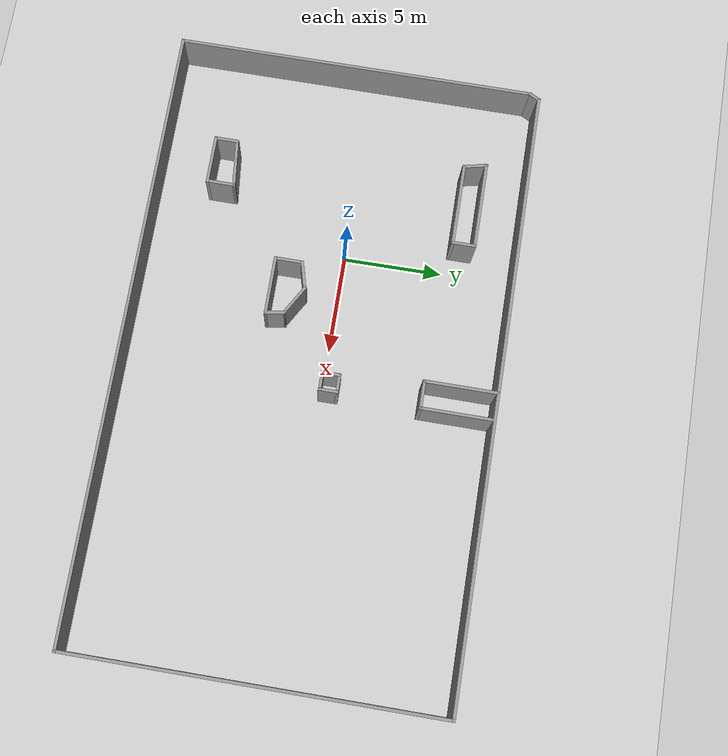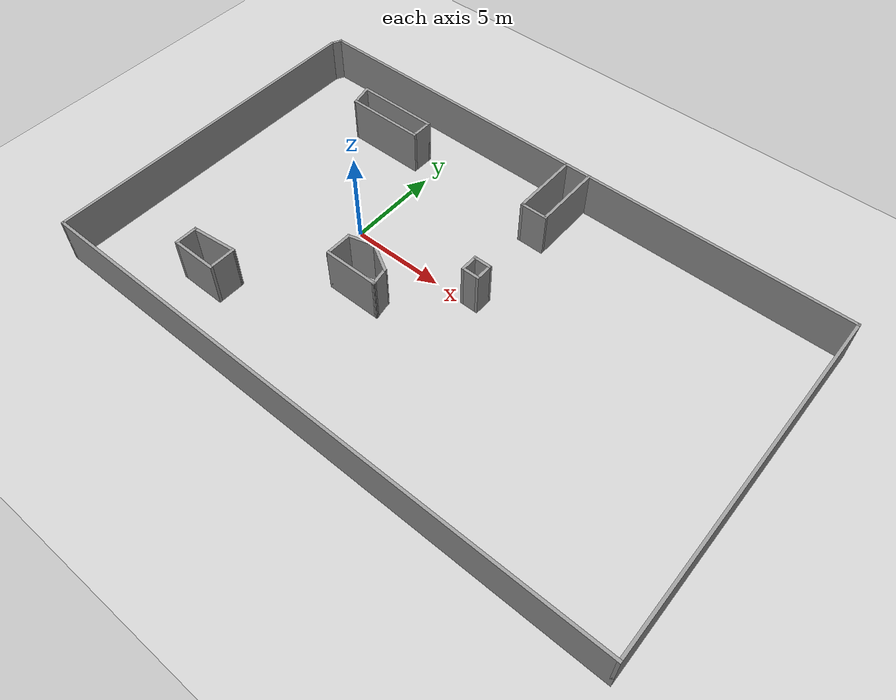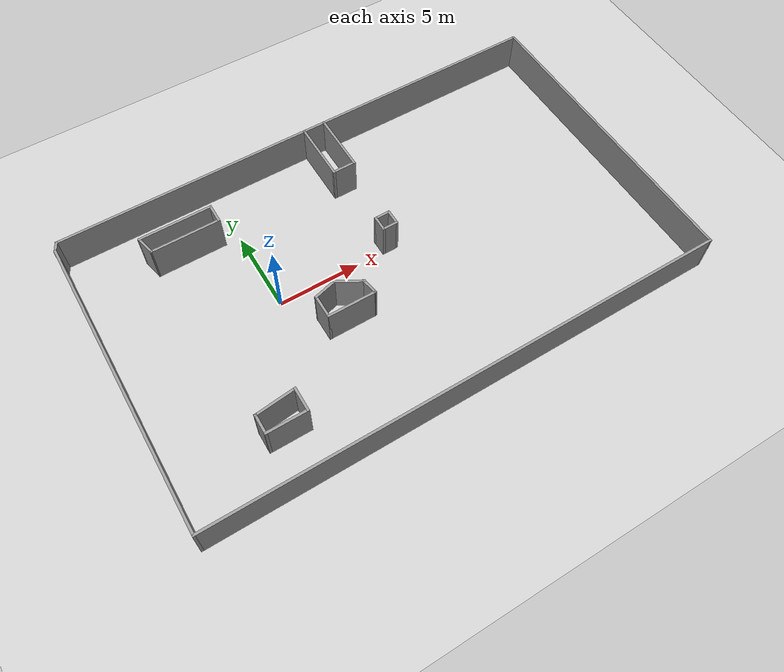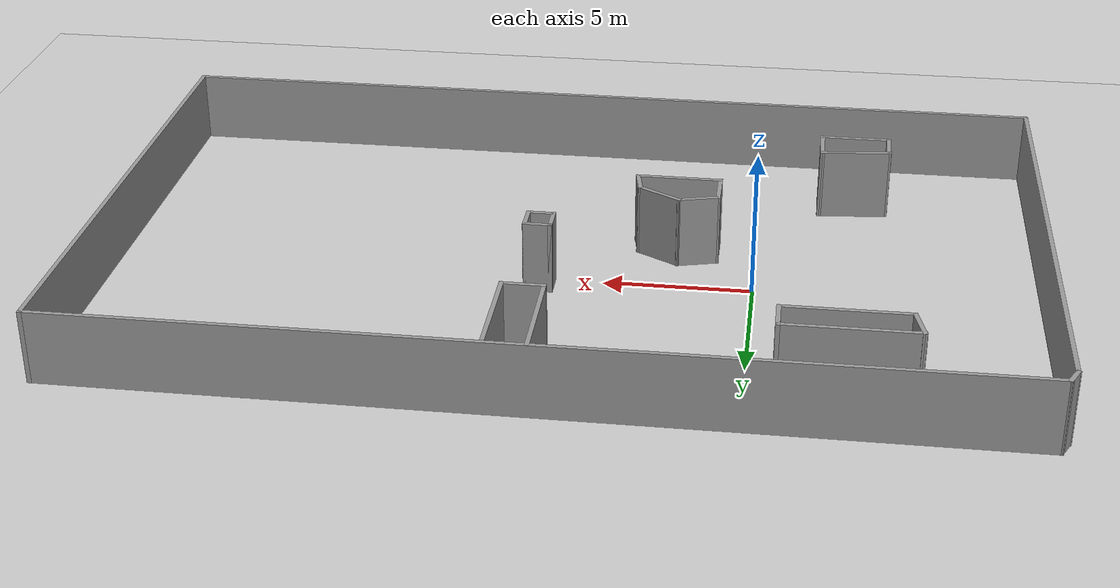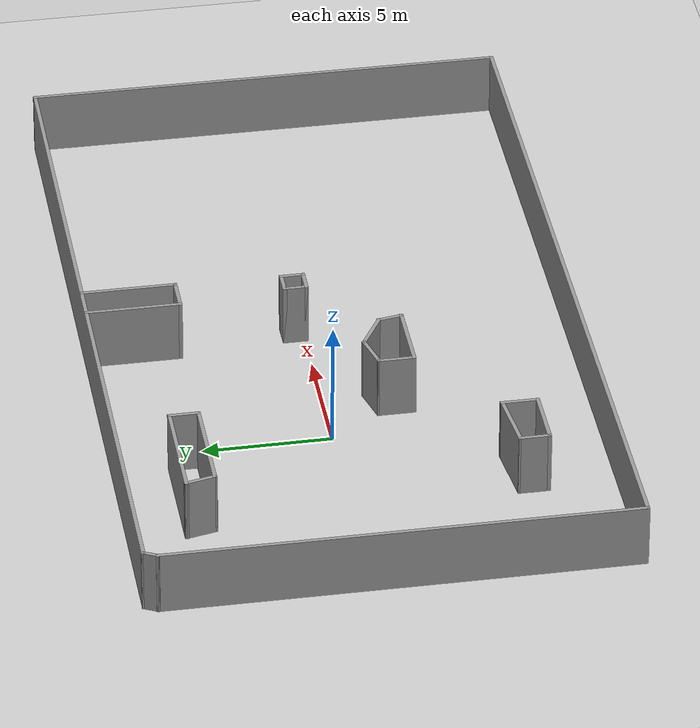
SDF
<sdf version="1.7">
 <world name="default">
  <light name="sun" type="directional">
   <pose>0 0 10 0 -0 0</pose>
   <diffuse>0.8 0.8 0.8 1</diffuse>
   <specular>0.2 0.2 0.2 1</specular>
   <attenuation>
    <range>1000</range>
    <constant>0.9</constant>
    <linear>0.01</linear>
    <quadratic>0.001</quadratic>
   </attenuation>
   <direction>-0.5 0.1 -0.9</direction>
   <spot><inner_angle>0</inner_angle><outer_angle>0</outer_angle><falloff>0</falloff></spot>
  </light>
  <model name="ground_plane">
   <static>1</static>
   <link name="link">
    <collision name="collision">
     <geometry><plane><normal>0 0 1</normal><size>100 100</size></plane></geometry>
     <surface>
      <contact><collide_bitmask>65535</collide_bitmask></contact>
      <friction><ode><mu>100</mu><mu2>50</mu2></ode></friction>
     </surface>
    </collision>
    <visual name="visual">
     <cast_shadows>0</cast_shadows>
     <geometry><plane><normal>0 0 1</normal><size>100 100</size></plane></geometry>
     <material>
      <script><uri>file://media/materials/scripts/gazebo.material</uri><name>Gazebo/Grey</name></script>
     </material>
    </visual>
   </link>
  </model>
  <gravity>0 0 -9.8</gravity>
  <magnetic_field>6e-06 2.3e-05 -4.2e-05</magnetic_field>
  <atmosphere type="adiabatic"/>
  <physics type="ode">
   <max_step_size>0.001</max_step_size>
   <real_time_factor>1</real_time_factor>
   <real_time_update_rate>1000</real_time_update_rate>
  </physics>
  <scene><ambient>0.4 0.4 0.4 1</ambient><background>0.7 0.7 0.7 1</background><shadows>1</shadows></scene>
  <spherical_coordinates>
   <surface_model>EARTH_WGS84</surface_model>
   <latitude_deg>0</latitude_deg>
   <longitude_deg>0</longitude_deg>
   <elevation>0</elevation>
   <heading_deg>0</heading_deg>
  </spherical_coordinates>
  <model name="big20250409">
   <pose>6.104 -0.784719 0 0 -0 0</pose>
   <link name="Wall_0">
    <collision name="Wall_0_Collision">
     <geometry><box><size>18.25 0.15 2.5</size></box></geometry>
     <pose>0 0 1.25 0 -0 0</pose>
    </collision>
    <visual name="Wall_0_Visual">
     <pose>0 0 1.25 0 -0 0</pose>
     <geometry><box><size>18.25 0.15 2.5</size></box></geometry>
     <material>
      <script><uri>file://media/materials/scripts/gazebo.material</uri><name>Gazebo/Grey</name></script>
      <ambient>1 1 1 1</ambient>
     </material>
     <meta><layer>0</layer></meta>
    </visual>
    <pose>-15.6622 -0.262811 0 0 -0 -1.5708</pose>
   </link>
   <link name="Wall_1">
    <collision name="Wall_1_Collision">
     <geometry><box><size>31.5 0.15 2.5</size></box></geometry>
     <pose>0 0 1.25 0 -0 0</pose>
    </collision>
    <visual name="Wall_1_Visual">
     <pose>0 0 1.25 0 -0 0</pose>
     <geometry><box><size>31.5 0.15 2.5</size></box></geometry>
     <material>
      <script><uri>file://media/materials/scripts/gazebo.material</uri><name>Gazebo/Grey</name></script>
      <ambient>1 1 1 1</ambient>
     </material>
     <meta><layer>0</layer></meta>
    </visual>
    <pose>0.012811 -9.31281 0 0 -0 0</pose>
   </link>
   <link name="Wall_11">
    <collision name="Wall_11_Collision">
     <geometry><box><size>1.75 0.15 2.5</size></box></geometry>
     <pose>0 0 1.25 0 -0 0</pose>
    </collision>
    <visual name="Wall_11_Visual">
     <pose>0 0 1.25 0 -0 0</pose>
     <geometry><box><size>1.75 0.15 2.5</size></box></geometry>
     <material>
      <script><uri>file://media/materials/scripts/gazebo.material</uri><name>Gazebo/Grey</name></script>
      <ambient>1 1 1 1</ambient>
     </material>
     <meta><layer>0</layer></meta>
    </visual>
    <pose>-2.78197 -1.24845 0 0 -0 2.61799</pose>
   </link>
   <link name="Wall_12">
    <collision name="Wall_12_Collision">
     <geometry><box><size>1.5 0.15 2.5</size></box></geometry>
     <pose>0 0 1.25 0 -0 0</pose>
    </collision>
    <visual name="Wall_12_Visual">
     <pose>0 0 1.25 0 -0 0</pose>
     <geometry><box><size>1.5 0.15 2.5</size></box></geometry>
     <material>
      <script><uri>file://media/materials/scripts/gazebo.material</uri><name>Gazebo/Grey</name></script>
      <ambient>1 1 1 1</ambient>
     </material>
     <meta><layer>0</layer></meta>
    </visual>
    <pose>-4.12679 -1.02315 0 0 -0 -2.87979</pose>
   </link>
   <link name="Wall_13">
    <collision name="Wall_13_Collision">
     <geometry><box><size>1.5 0.15 2.5</size></box></geometry>
     <pose>0 0 1.25 0 -0 0</pose>
    </collision>
    <visual name="Wall_13_Visual">
     <pose>0 0 1.25 0 -0 0</pose>
     <geometry><box><size>1.5 0.15 2.5</size></box></geometry>
     <material>
      <script><uri>file://media/materials/scripts/gazebo.material</uri><name>Gazebo/Grey</name></script>
      <ambient>1 1 1 1</ambient>
     </material>
     <meta><layer>0</layer></meta>
    </visual>
    <pose>-4.77879 -1.87285 0 0 -0 -1.5708</pose>
   </link>
   <link name="Wall_14">
    <collision name="Wall_14_Collision">
     <geometry><box><size>3 0.15 2.5</size></box></geometry>
     <pose>0 0 1.25 0 -0 0</pose>
    </collision>
    <visual name="Wall_14_Visual">
     <pose>0 0 1.25 0 -0 0</pose>
     <geometry><box><size>3 0.15 2.5</size></box></geometry>
     <material>
      <script><uri>file://media/materials/scripts/gazebo.material</uri><name>Gazebo/Grey</name></script>
      <ambient>1 1 1 1</ambient>
     </material>
     <meta><layer>0</layer></meta>
    </visual>
    <pose>-3.35378 -2.54785 0 0 -0 0</pose>
   </link>
   <link name="Wall_15">
    <collision name="Wall_15_Collision">
     <geometry><box><size>1.06359 0.15 2.5</size></box></geometry>
     <pose>0 0 1.25 0 -0 0</pose>
    </collision>
    <visual name="Wall_15_Visual">
     <pose>0 0 1.25 0 -0 0</pose>
     <geometry><box><size>1.06359 0.15 2.5</size></box></geometry>
     <material>
      <script><uri>file://media/materials/scripts/gazebo.material</uri><name>Gazebo/Grey</name></script>
      <ambient>1 1 1 1</ambient>
     </material>
     <meta><layer>0</layer></meta>
    </visual>
    <pose>-2.00896 -2.09815 0 0 -0 1.74724</pose>
   </link>
   <link name="Wall_17">
    <collision name="Wall_17_Collision">
     <geometry><box><size>4.5 0.15 2.5</size></box></geometry>
     <pose>0 0 1.25 0 -0 0</pose>
    </collision>
    <visual name="Wall_17_Visual">
     <pose>0 0 1.25 0 -0 0</pose>
     <geometry><box><size>4.5 0.15 2.5</size></box></geometry>
     <material>
      <script><uri>file://media/materials/scripts/gazebo.material</uri><name>Gazebo/Grey</name></script>
      <ambient>1 1 1 1</ambient>
     </material>
     <meta><layer>0</layer></meta>
    </visual>
    <pose>-9.22358 7.12596 0 0 -0 0</pose>
   </link>
   <link name="Wall_18">
    <collision name="Wall_18_Collision">
     <geometry><box><size>1.25 0.15 2.5</size></box></geometry>
     <pose>0 0 1.25 0 -0 0</pose>
    </collision>
    <visual name="Wall_18_Visual">
     <pose>0 0 1.25 0 -0 0</pose>
     <geometry><box><size>1.25 0.15 2.5</size></box></geometry>
     <material>
      <script><uri>file://media/materials/scripts/gazebo.material</uri><name>Gazebo/Grey</name></script>
      <ambient>1 1 1 1</ambient>
     </material>
     <meta><layer>0</layer></meta>
    </visual>
    <pose>-7.04858 6.57596 0 0 -0 -1.5708</pose>
   </link>
   <link name="Wall_19">
    <collision name="Wall_19_Collision">
     <geometry><box><size>4.25 0.15 2.5</size></box></geometry>
     <pose>0 0 1.25 0 -0 0</pose>
    </collision>
    <visual name="Wall_19_Visual">
     <pose>0 0 1.25 0 -0 0</pose>
     <geometry><box><size>4.25 0.15 2.5</size></box></geometry>
     <material>
      <script><uri>file://media/materials/scripts/gazebo.material</uri><name>Gazebo/Grey</name></script>
      <ambient>1 1 1 1</ambient>
     </material>
     <meta><layer>0</layer></meta>
    </visual>
    <pose>-9.09858 6.02596 0 0 -0 3.14159</pose>
   </link>
   <link name="Wall_2">
    <collision name="Wall_2_Collision">
     <geometry><box><size>18.75 0.15 2.5</size></box></geometry>
     <pose>0 0 1.25 0 -0 0</pose>
    </collision>
    <visual name="Wall_2_Visual">
     <pose>0 0 1.25 0 -0 0</pose>
     <geometry><box><size>18.75 0.15 2.5</size></box></geometry>
     <material>
      <script><uri>file://media/materials/scripts/gazebo.material</uri><name>Gazebo/Grey</name></script>
      <ambient>1 1 1 1</ambient>
     </material>
     <meta><layer>0</layer></meta>
    </visual>
    <pose>15.6878 -0.012811 0 0 -0 1.5708</pose>
   </link>
   <link name="Wall_20">
    <collision name="Wall_20_Collision">
     <geometry><box><size>1.27805 0.15 2.5</size></box></geometry>
     <pose>0 0 1.25 0 -0 0</pose>
    </collision>
    <visual name="Wall_20_Visual">
     <pose>0 0 1.25 0 -0 0</pose>
     <geometry><box><size>1.27805 0.15 2.5</size></box></geometry>
     <material>
      <script><uri>file://media/materials/scripts/gazebo.material</uri><name>Gazebo/Grey</name></script>
      <ambient>1 1 1 1</ambient>
     </material>
     <meta><layer>0</layer></meta>
    </visual>
    <pose>-11.2736 6.57596 0 0 -0 1.79427</pose>
   </link>
   <link name="Wall_22">
    <collision name="Wall_22_Collision">
     <geometry><box><size>3.75 0.15 2.5</size></box></geometry>
     <pose>0 0 1.25 0 -0 0</pose>
    </collision>
    <visual name="Wall_22_Visual">
     <pose>0 0 1.25 0 -0 0</pose>
     <geometry><box><size>3.75 0.15 2.5</size></box></geometry>
     <material>
      <script><uri>file://media/materials/scripts/gazebo.material</uri><name>Gazebo/Grey</name></script>
      <ambient>1 1 1 1</ambient>
     </material>
     <meta><layer>0</layer></meta>
    </visual>
    <pose>1.54903 7.46606 0 0 -0 -1.5708</pose>
   </link>
   <link name="Wall_23">
    <collision name="Wall_23_Collision">
     <geometry><box><size>1.5 0.15 2.5</size></box></geometry>
     <pose>0 0 1.25 0 -0 0</pose>
    </collision>
    <visual name="Wall_23_Visual">
     <pose>0 0 1.25 0 -0 0</pose>
     <geometry><box><size>1.5 0.15 2.5</size></box></geometry>
     <material>
      <script><uri>file://media/materials/scripts/gazebo.material</uri><name>Gazebo/Grey</name></script>
      <ambient>1 1 1 1</ambient>
     </material>
     <meta><layer>0</layer></meta>
    </visual>
    <pose>0.874025 5.66606 0 0 -0 3.14159</pose>
   </link>
   <link name="Wall_24">
    <collision name="Wall_24_Collision">
     <geometry><box><size>3.75 0.15 2.5</size></box></geometry>
     <pose>0 0 1.25 0 -0 0</pose>
    </collision>
    <visual name="Wall_24_Visual">
     <pose>0 0 1.25 0 -0 0</pose>
     <geometry><box><size>3.75 0.15 2.5</size></box></geometry>
     <material>
      <script><uri>file://media/materials/scripts/gazebo.material</uri><name>Gazebo/Grey</name></script>
      <ambient>1 1 1 1</ambient>
     </material>
     <meta><layer>0</layer></meta>
    </visual>
    <pose>0.199025 7.46606 0 0 -0 1.5708</pose>
   </link>
   <link name="Wall_26">
    <collision name="Wall_26_Collision">
     <geometry><box><size>1 0.15 2.5</size></box></geometry>
     <pose>0 0 1.25 0 -0 0</pose>
    </collision>
    <visual name="Wall_26_Visual">
     <pose>0 0 1.25 0 -0 0</pose>
     <geometry><box><size>1 0.15 2.5</size></box></geometry>
     <material>
      <script><uri>file://media/materials/scripts/gazebo.material</uri><name>Gazebo/Grey</name></script>
      <ambient>1 1 1 1</ambient>
     </material>
     <meta><layer>0</layer></meta>
    </visual>
    <pose>0.58598 1.1367 0 0 -0 -1.5708</pose>
   </link>
   <link name="Wall_27">
    <collision name="Wall_27_Collision">
     <geometry><box><size>1 0.15 2.5</size></box></geometry>
     <pose>0 0 1.25 0 -0 0</pose>
    </collision>
    <visual name="Wall_27_Visual">
     <pose>0 0 1.25 0 -0 0</pose>
     <geometry><box><size>1 0.15 2.5</size></box></geometry>
     <material>
      <script><uri>file://media/materials/scripts/gazebo.material</uri><name>Gazebo/Grey</name></script>
      <ambient>1 1 1 1</ambient>
     </material>
     <meta><layer>0</layer></meta>
    </visual>
    <pose>1.01098 0.711704 0 0 -0 0</pose>
   </link>
   <link name="Wall_28">
    <collision name="Wall_28_Collision">
     <geometry><box><size>1 0.15 2.5</size></box></geometry>
     <pose>0 0 1.25 0 -0 0</pose>
    </collision>
    <visual name="Wall_28_Visual">
     <pose>0 0 1.25 0 -0 0</pose>
     <geometry><box><size>1 0.15 2.5</size></box></geometry>
     <material>
      <script><uri>file://media/materials/scripts/gazebo.material</uri><name>Gazebo/Grey</name></script>
      <ambient>1 1 1 1</ambient>
     </material>
     <meta><layer>0</layer></meta>
    </visual>
    <pose>1.43598 1.1367 0 0 -0 1.5708</pose>
   </link>
   <link name="Wall_29">
    <collision name="Wall_29_Collision">
     <geometry><box><size>1 0.15 2.5</size></box></geometry>
     <pose>0 0 1.25 0 -0 0</pose>
    </collision>
    <visual name="Wall_29_Visual">
     <pose>0 0 1.25 0 -0 0</pose>
     <geometry><box><size>1 0.15 2.5</size></box></geometry>
     <material>
      <script><uri>file://media/materials/scripts/gazebo.material</uri><name>Gazebo/Grey</name></script>
      <ambient>1 1 1 1</ambient>
     </material>
     <meta><layer>0</layer></meta>
    </visual>
    <pose>1.01098 1.5617 0 0 -0 3.14159</pose>
   </link>
   <link name="Wall_3">
    <collision name="Wall_3_Collision">
     <geometry><box><size>31.25 0.15 2.5</size></box></geometry>
     <pose>0 0 1.25 0 -0 0</pose>
    </collision>
    <visual name="Wall_3_Visual">
     <pose>0 0 1.25 0 -0 0</pose>
     <geometry><box><size>31.25 0.15 2.5</size></box></geometry>
     <material>
      <script><uri>file://media/materials/scripts/gazebo.material</uri><name>Gazebo/Grey</name></script>
      <ambient>1 1 1 1</ambient>
     </material>
     <meta><layer>0</layer></meta>
    </visual>
    <pose>0.137811 9.28719 0 0 -0 3.14159</pose>
   </link>
   <link name="Wall_4">
    <collision name="Wall_4_Collision">
     <geometry><box><size>0.709017 0.15 2.5</size></box></geometry>
     <pose>0 0 1.25 0 -0 0</pose>
    </collision>
    <visual name="Wall_4_Visual">
     <pose>0 0 1.25 0 -0 0</pose>
     <geometry><box><size>0.709017 0.15 2.5</size></box></geometry>
     <material>
      <script><uri>file://media/materials/scripts/gazebo.material</uri><name>Gazebo/Grey</name></script>
      <ambient>1 1 1 1</ambient>
     </material>
     <meta><layer>0</layer></meta>
    </visual>
    <pose>-15.5372 9.03719 0 0 -0 -2.03444</pose>
   </link>
   <link name="Wall_6">
    <collision name="Wall_6_Collision">
     <geometry><box><size>1.5 0.15 2.5</size></box></geometry>
     <pose>0 0 1.25 0 -0 0</pose>
    </collision>
    <visual name="Wall_6_Visual">
     <pose>0 0 1.25 0 -0 0</pose>
     <geometry><box><size>1.5 0.15 2.5</size></box></geometry>
     <material>
      <script><uri>file://media/materials/scripts/gazebo.material</uri><name>Gazebo/Grey</name></script>
      <ambient>1 1 1 1</ambient>
     </material>
     <meta><layer>0</layer></meta>
    </visual>
    <pose>-8.24193 -5.96162 0 0 -0 -1.5708</pose>
   </link>
   <link name="Wall_7">
    <collision name="Wall_7_Collision">
     <geometry><box><size>2.5 0.15 2.5</size></box></geometry>
     <pose>0 0 1.25 0 -0 0</pose>
    </collision>
    <visual name="Wall_7_Visual">
     <pose>0 0 1.25 0 -0 0</pose>
     <geometry><box><size>2.5 0.15 2.5</size></box></geometry>
     <material>
      <script><uri>file://media/materials/scripts/gazebo.material</uri><name>Gazebo/Grey</name></script>
      <ambient>1 1 1 1</ambient>
     </material>
     <meta><layer>0</layer></meta>
    </visual>
    <pose>-9.41693 -6.63662 0 0 -0 3.14159</pose>
   </link>
   <link name="Wall_8">
    <collision name="Wall_8_Collision">
     <geometry><box><size>1.25 0.15 2.5</size></box></geometry>
     <pose>0 0 1.25 0 -0 0</pose>
    </collision>
    <visual name="Wall_8_Visual">
     <pose>0 0 1.25 0 -0 0</pose>
     <geometry><box><size>1.25 0.15 2.5</size></box></geometry>
     <material>
      <script><uri>file://media/materials/scripts/gazebo.material</uri><name>Gazebo/Grey</name></script>
      <ambient>1 1 1 1</ambient>
     </material>
     <meta><layer>0</layer></meta>
    </visual>
    <pose>-10.5919 -6.08662 0 0 -0 1.5708</pose>
   </link>
   <link name="Wall_9">
    <collision name="Wall_9_Collision">
     <geometry><box><size>2.51326 0.15 2.5</size></box></geometry>
     <pose>0 0 1.25 0 -0 0</pose>
    </collision>
    <visual name="Wall_9_Visual">
     <pose>0 0 1.25 0 -0 0</pose>
     <geometry><box><size>2.51326 0.15 2.5</size></box></geometry>
     <material>
      <script><uri>file://media/materials/scripts/gazebo.material</uri><name>Gazebo/Grey</name></script>
      <ambient>1 1 1 1</ambient>
     </material>
     <meta><layer>0</layer></meta>
    </visual>
    <pose>-9.41693 -5.41162 0 0 -0 0.105984</pose>
   </link>
   <static>1</static>
  </model>
 </world>
</sdf>
